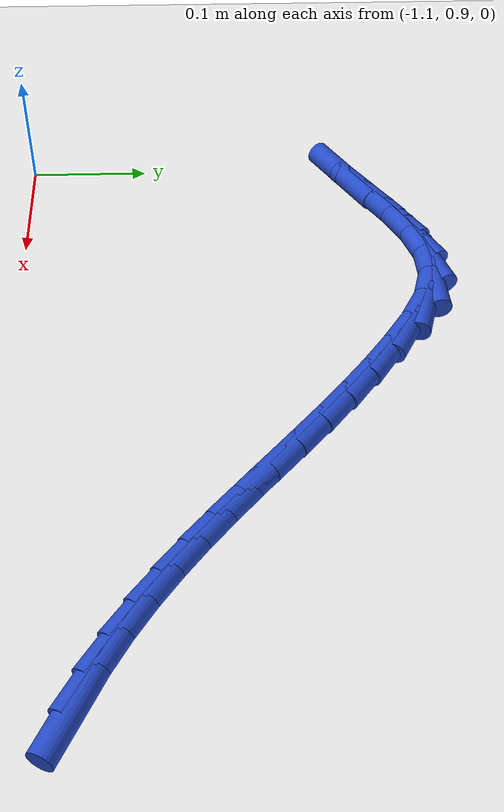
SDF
<sdf version="1.6">
 <world name="default">
  <model name="ground_plane">
   <static>1</static>
   <link name="link">
    <collision name="collision">
     <geometry><plane><normal>0 0 1</normal><size>100 100</size></plane></geometry>
     <surface><friction><ode><mu>100</mu><mu2>50</mu2></ode></friction></surface>
    </collision>
    <visual name="visual">
     <cast_shadows>0</cast_shadows>
     <geometry><plane><normal>0 0 1</normal><size>100 100</size></plane></geometry>
     <material>
      <script><uri>file://media/materials/scripts/gazebo.material</uri><name>Gazebo/WhiteGlow</name></script>
     </material>
    </visual>
   </link>
  </model>
  <model name="line">
   <link name="link_41">
    <pose>-0.5721216248791862 0.9692023905078724 0.01 0 1.57 -0.4648060281750025</pose>
    <collision name="collision">
     <geometry><cylinder><radius>0.01</radius><length>0.08</length></cylinder></geometry>
    </collision>
    <visual name="visual">
     <material>
      <script><name>Gazebo/Blue</name><uri>file://media/materials/scripts/gazebo.material</uri></script>
     </material>
     <geometry><cylinder><radius>0.01</radius><length>0.08</length></cylinder></geometry>
    </visual>
   </link>
   <link name="link_42">
    <pose>-0.5987215316499668 0.9825408835355761 0.01 0 1.57 -0.5288140786739194</pose>
    <collision name="collision">
     <geometry><cylinder><radius>0.01</radius><length>0.08</length></cylinder></geometry>
    </collision>
    <visual name="visual">
     <material>
      <script><name>Gazebo/Blue</name><uri>file://media/materials/scripts/gazebo.material</uri></script>
     </material>
     <geometry><cylinder><radius>0.01</radius><length>0.08</length></cylinder></geometry>
    </visual>
   </link>
   <link name="link_43">
    <pose>-0.6240015531233065 0.9973126338876024 0.01 0 1.57 -0.5869843435602776</pose>
    <collision name="collision">
     <geometry><cylinder><radius>0.01</radius><length>0.08</length></cylinder></geometry>
    </collision>
    <visual name="visual">
     <material>
      <script><name>Gazebo/Blue</name><uri>file://media/materials/scripts/gazebo.material</uri></script>
     </material>
     <geometry><cylinder><radius>0.01</radius><length>0.08</length></cylinder></geometry>
    </visual>
   </link>
   <link name="link_44">
    <pose>-0.6481363241935962 1.0133670074330503 0.01 0 1.57 -0.6364742065862207</pose>
    <collision name="collision">
     <geometry><cylinder><radius>0.01</radius><length>0.08</length></cylinder></geometry>
    </collision>
    <visual name="visual">
     <material>
      <script><name>Gazebo/Blue</name><uri>file://media/materials/scripts/gazebo.material</uri></script>
     </material>
     <geometry><cylinder><radius>0.01</radius><length>0.08</length></cylinder></geometry>
    </visual>
   </link>
   <link name="link_45">
    <pose>-0.6713395191528839 1.0305159748118744 0.01 0 1.57 -0.676563248699346</pose>
    <collision name="collision">
     <geometry><cylinder><radius>0.01</radius><length>0.08</length></cylinder></geometry>
    </collision>
    <visual name="visual">
     <material>
      <script><name>Gazebo/Blue</name><uri>file://media/materials/scripts/gazebo.material</uri></script>
     </material>
     <geometry><cylinder><radius>0.01</radius><length>0.08</length></cylinder></geometry>
    </visual>
   </link>
   <link name="link_46">
    <pose>-0.6938248122932177 1.0485715066640293 0.01 0 1.57 -0.7068705362299524</pose>
    <collision name="collision">
     <geometry><cylinder><radius>0.01</radius><length>0.08</length></cylinder></geometry>
    </collision>
    <visual name="visual">
     <material>
      <script><name>Gazebo/Blue</name><uri>file://media/materials/scripts/gazebo.material</uri></script>
     </material>
     <geometry><cylinder><radius>0.01</radius><length>0.08</length></cylinder></geometry>
    </visual>
   </link>
   <link name="link_47">
    <pose>-0.715805877906645 1.0673455736294688 0.01 0 1.57 -0.7272631176615374</pose>
    <collision name="collision">
     <geometry><cylinder><radius>0.01</radius><length>0.08</length></cylinder></geometry>
    </collision>
    <visual name="visual">
     <material>
      <script><name>Gazebo/Blue</name><uri>file://media/materials/scripts/gazebo.material</uri></script>
     </material>
     <geometry><cylinder><radius>0.01</radius><length>0.08</length></cylinder></geometry>
    </visual>
   </link>
   <link name="link_48">
    <pose>-0.7374963902852139 1.0866501463481475 0.01 0 1.57 -0.7377717776666011</pose>
    <collision name="collision">
     <geometry><cylinder><radius>0.01</radius><length>0.08</length></cylinder></geometry>
    </collision>
    <visual name="visual">
     <material>
      <script><name>Gazebo/Blue</name><uri>file://media/materials/scripts/gazebo.material</uri></script>
     </material>
     <geometry><cylinder><radius>0.01</radius><length>0.08</length></cylinder></geometry>
    </visual>
   </link>
   <link name="link_49">
    <pose>-0.7591100237209718 1.1062971954600191 0.01 0 1.57 -0.7385289666817251</pose>
    <collision name="collision">
     <geometry><cylinder><radius>0.01</radius><length>0.08</length></cylinder></geometry>
    </collision>
    <visual name="visual">
     <material>
      <script><name>Gazebo/Blue</name><uri>file://media/materials/scripts/gazebo.material</uri></script>
     </material>
     <geometry><cylinder><radius>0.01</radius><length>0.08</length></cylinder></geometry>
    </visual>
   </link>
   <link name="link_50">
    <pose>-0.7808604525059676 1.1260986916050388 0.01 0 1.57 -0.7297344261502884</pose>
    <collision name="collision">
     <geometry><cylinder><radius>0.01</radius><length>0.08</length></cylinder></geometry>
    </collision>
    <visual name="visual">
     <material>
      <script><name>Gazebo/Blue</name><uri>file://media/materials/scripts/gazebo.material</uri></script>
     </material>
     <geometry><cylinder><radius>0.01</radius><length>0.08</length></cylinder></geometry>
    </visual>
   </link>
   <link name="link_51">
    <pose>-0.8029613509322482 1.14586660542316 0.01 0 1.57 -0.7116482299649388</pose>
    <collision name="collision">
     <geometry><cylinder><radius>0.01</radius><length>0.08</length></cylinder></geometry>
    </collision>
    <visual name="visual">
     <material>
      <script><name>Gazebo/Blue</name><uri>file://media/materials/scripts/gazebo.material</uri></script>
     </material>
     <geometry><cylinder><radius>0.01</radius><length>0.08</length></cylinder></geometry>
    </visual>
   </link>
   <link name="link_52">
    <pose>-0.8256263932918614 1.1654129075543374 0.01 0 1.57 -0.6846077449265867</pose>
    <collision name="collision">
     <geometry><cylinder><radius>0.01</radius><length>0.08</length></cylinder></geometry>
    </collision>
    <visual name="visual">
     <material>
      <script><name>Gazebo/Blue</name><uri>file://media/materials/scripts/gazebo.material</uri></script>
     </material>
     <geometry><cylinder><radius>0.01</radius><length>0.08</length></cylinder></geometry>
    </visual>
   </link>
   <link name="link_53">
    <pose>-0.8490692538768555 1.1845495686385252 0.01 0 1.57 -0.6490627013791429</pose>
    <collision name="collision">
     <geometry><cylinder><radius>0.01</radius><length>0.08</length></cylinder></geometry>
    </collision>
    <visual name="visual">
     <material>
      <script><name>Gazebo/Blue</name><uri>file://media/materials/scripts/gazebo.material</uri></script>
     </material>
     <geometry><cylinder><radius>0.01</radius><length>0.08</length></cylinder></geometry>
    </visual>
   </link>
   <link name="link_54">
    <pose>-0.8735036069792784 1.203088559315678 0.01 0 1.57 -0.6025146676400259</pose>
    <collision name="collision">
     <geometry><cylinder><radius>0.01</radius><length>0.08</length></cylinder></geometry>
    </collision>
    <visual name="visual">
     <material>
      <script><name>Gazebo/Blue</name><uri>file://media/materials/scripts/gazebo.material</uri></script>
     </material>
     <geometry><cylinder><radius>0.01</radius><length>0.08</length></cylinder></geometry>
    </visual>
   </link>
   <link name="link_55">
    <pose>-0.8991029577073367 1.2206966840842806 0.01 0 1.57 -0.49761944474961695</pose>
    <collision name="collision">
     <geometry><cylinder><radius>0.01</radius><length>0.08</length></cylinder></geometry>
    </collision>
    <visual name="visual">
     <material>
      <script><name>Gazebo/Blue</name><uri>file://media/materials/scripts/gazebo.material</uri></script>
     </material>
     <geometry><cylinder><radius>0.01</radius><length>0.08</length></cylinder></geometry>
    </visual>
   </link>
   <link name="link_56">
    <pose>-0.9254835992125153 1.2350270567973185 0.01 0 1.57 -0.2682205913940863</pose>
    <collision name="collision">
     <geometry><cylinder><radius>0.01</radius><length>0.08</length></cylinder></geometry>
    </collision>
    <visual name="visual">
     <material>
      <script><name>Gazebo/Blue</name><uri>file://media/materials/scripts/gazebo.material</uri></script>
     </material>
     <geometry><cylinder><radius>0.01</radius><length>0.08</length></cylinder></geometry>
    </visual>
   </link>
   <link name="link_57">
    <pose>-0.9518570570471334 1.2422756269401118 0.01 0 1.57 0.06903926567369674</pose>
    <collision name="collision">
     <geometry><cylinder><radius>0.01</radius><length>0.08</length></cylinder></geometry>
    </collision>
    <visual name="visual">
     <material>
      <script><name>Gazebo/Blue</name><uri>file://media/materials/scripts/gazebo.material</uri></script>
     </material>
     <geometry><cylinder><radius>0.01</radius><length>0.08</length></cylinder></geometry>
    </visual>
   </link>
   <link name="link_58">
    <pose>-0.9777603229011909 1.2404844377288018 0.01 0 1.57 0.3431169665931968</pose>
    <collision name="collision">
     <geometry><cylinder><radius>0.01</radius><length>0.08</length></cylinder></geometry>
    </collision>
    <visual name="visual">
     <material>
      <script><name>Gazebo/Blue</name><uri>file://media/materials/scripts/gazebo.material</uri></script>
     </material>
     <geometry><cylinder><radius>0.01</radius><length>0.08</length></cylinder></geometry>
    </visual>
   </link>
   <link name="link_59">
    <pose>-1.0033781351368205 1.2313325318866308 0.01 0 1.57 0.5130599263991558</pose>
    <collision name="collision">
     <geometry><cylinder><radius>0.01</radius><length>0.08</length></cylinder></geometry>
    </collision>
    <visual name="visual">
     <material>
      <script><name>Gazebo/Blue</name><uri>file://media/materials/scripts/gazebo.material</uri></script>
     </material>
     <geometry><cylinder><radius>0.01</radius><length>0.08</length></cylinder></geometry>
    </visual>
   </link>
   <link name="link_60">
    <pose>-1.028969311997734 1.2169148994575727 0.01 0 1.57 0.5979305423929585</pose>
    <collision name="collision">
     <geometry><cylinder><radius>0.01</radius><length>0.08</length></cylinder></geometry>
    </collision>
    <visual name="visual">
     <material>
      <script><name>Gazebo/Blue</name><uri>file://media/materials/scripts/gazebo.material</uri></script>
     </material>
     <geometry><cylinder><radius>0.01</radius><length>0.08</length></cylinder></geometry>
    </visual>
   </link>
   <link name="link_61">
    <pose>-1.0547926717276415 1.1993265304855982 0.01 0 1.57 0.6169236397583087</pose>
    <collision name="collision">
     <geometry><cylinder><radius>0.01</radius><length>0.08</length></cylinder></geometry>
    </collision>
    <visual name="visual">
     <material>
      <script><name>Gazebo/Blue</name><uri>file://media/materials/scripts/gazebo.material</uri></script>
     </material>
     <geometry><cylinder><radius>0.01</radius><length>0.08</length></cylinder></geometry>
    </visual>
   </link>
   <link name="link_62">
    <pose>-1.0811070325702554 1.18066241501468 0.01 0 1.57 0.5777546689653837</pose>
    <collision name="collision">
     <geometry><cylinder><radius>0.01</radius><length>0.08</length></cylinder></geometry>
    </collision>
    <visual name="visual">
     <material>
      <script><name>Gazebo/Blue</name><uri>file://media/materials/scripts/gazebo.material</uri></script>
     </material>
     <geometry><cylinder><radius>0.01</radius><length>0.08</length></cylinder></geometry>
    </visual>
   </link>
  </model>
 </world>
</sdf>
